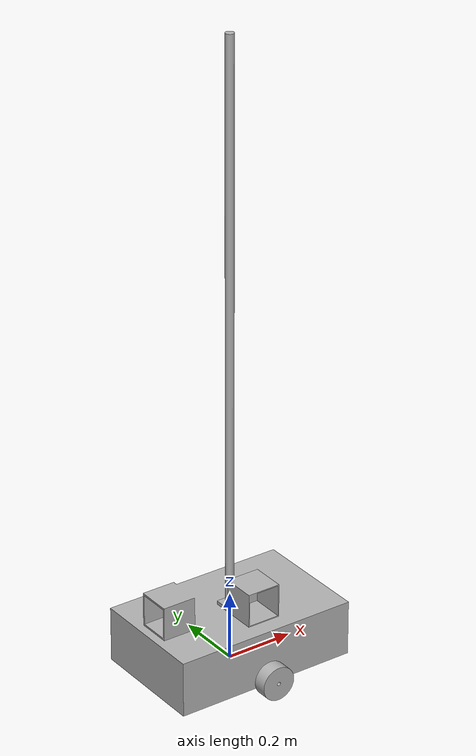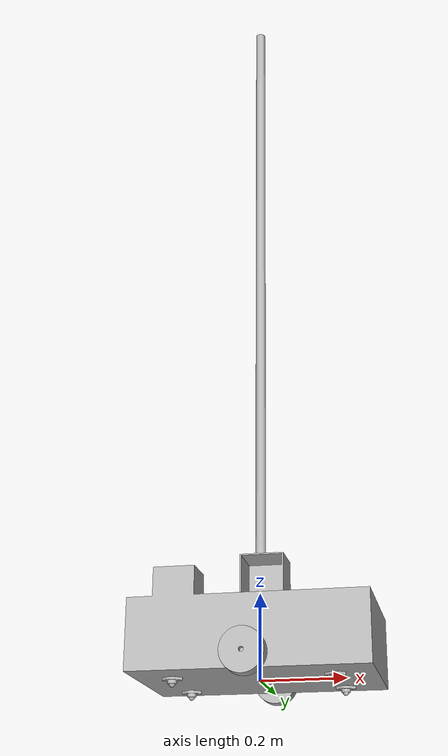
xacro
<?xml version="1.0"?>
<robot xmlns:xacro="http://www.ros.org/wiki/xacro"  name="robot">

    <xacro:arg name="use_ros2_control" default="true"/>
    <xacro:arg name="sim_mode" default="false"/>

    <xacro:include filename="robot_core.xacro" />

    <xacro:include filename="ros2_control.xacro" />

</robot>

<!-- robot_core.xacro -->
<robot name="final_urdf" xmlns:xacro="http://www.ros.org/wiki/xacro">

<xacro:include filename="$(find wh_bot)/description/materials.xacro" />
<xacro:include filename="$(find articubot_one)/description/inertial_macros.xacro" />

    <xacro:property name="chassis_length" value="0.335"/>
    <xacro:property name="chassis_width" value="0.265"/>
    <xacro:property name="chassis_height" value="0.138"/>
    <xacro:property name="chassis_mass" value="1.0"/>
    <xacro:property name="wheel_radius" value="0.033"/>
    <xacro:property name="wheel_thickness" value="0.026"/>
    <xacro:property name="wheel_mass" value="0.05"/>
    <xacro:property name="wheel_offset_x" value="0.226"/>
    <xacro:property name="wheel_offset_y" value="0.1485"/>
    <xacro:property name="wheel_offset_z" value="0.01"/>
    <xacro:property name="caster_wheel_radius" value="0.01"/>
    <xacro:property name="caster_wheel_mass" value="0.01"/>
    <xacro:property name="caster_wheel_offset_x" value="0.075"/>
    <xacro:property name="caster_wheel_offset_z" value="${wheel_offset_z - wheel_radius + caster_wheel_radius}"/>

<link name="base_link">
  <inertial>
    <origin xyz="-0.0015875 0.001 0.0831" rpy="0 0 0"/>
    <mass value="15.0"/>
    <inertia ixx="0.3" iyy="0.6" izz="0.8" ixy="0.0" iyz="0.0" ixz="0.0"/>
  </inertial>
  <visual>
    <origin xyz="0 0 0" rpy="0 0 0"/>
    <geometry>
      <mesh filename="file://$(find wh_bot)/meshes/tirth_bot/base_link.stl" scale="0.001 0.001 0.001"/>
    </geometry>
    <material name="silver"/>
  </visual>
  <collision>
    <origin xyz="0 0 0" rpy="0 0 0"/>
    <geometry>
      <mesh filename="file://$(find wh_bot)/meshes/tirth_bot/base_link.stl" scale="0.001 0.001 0.001"/>
    </geometry>
  </collision>
</link>

<link name="wheel1_1">
  <inertial>
    <origin xyz="0 0 0" rpy="0 0 0"/>
    <mass value="2.436"/>
    <inertia ixx="0.0018" iyy="0.003" izz="0.0018" ixy="0.0" iyz="0.0" ixz="0.0"/>
  </inertial>
  <visual>
    <origin xyz="-0.0 0.214 -0.029" rpy="0 0 0"/>
    <geometry>
      <mesh filename="file://$(find wh_bot)/meshes/tirth_bot/wheel1_1.stl" scale="0.001 0.001 0.001"/>
    </geometry>
    <material name="silver"/>
  </visual>
  <collision>
    <origin xyz="0 0 0" rpy="-1.5707 0 0"/>
    <geometry>
       <cylinder radius="0.05" length="0.02"/>
    </geometry>
  </collision>
</link>

<link name="wheel2_1">
  <inertial>
    <origin xyz="0 0 0" rpy="0 0 0"/>
    <mass value="2.436"/>
    <inertia ixx="0.0018" iyy="0.003" izz="0.0018" ixy="0.0" iyz="0.0" ixz="0.0"/>
  </inertial>
  <visual>
    <origin xyz="-0.0 -0.216 -0.029" rpy="0 0 0"/>
    <geometry>
      <mesh filename="file://$(find wh_bot)/meshes/tirth_bot/wheel2_1.stl" scale="0.001 0.001 0.001"/>
    </geometry>
    <material name="silver"/>
  </visual>
  <collision>
    <origin xyz="0 0 0" rpy="-1.5707 0 0"/>
    <geometry>
      <cylinder radius="0.05" length="0.02"/>
    </geometry>
  </collision>
</link>

<link name="mount_rod_1">
  <inertial>
    <origin xyz="0 0 0.8325" rpy="0 0 0"/>
    <mass value="6.415"/>
    <inertia ixx="1.482" iyy="1.482" izz="0.0005" ixy="0.0" iyz="0.0" ixz="0.0"/>
  </inertial>
  <visual>
    <origin xyz="-0.0 -0.001 -0.159" rpy="0 0 0"/>
    <geometry>
      <mesh filename="file://$(find wh_bot)/meshes/tirth_bot/mount_rod_1.stl" scale="0.001 0.001 0.001"/>
    </geometry>
    <material name="silver"/>
  </visual>
  <collision>
    <origin xyz="-0.0 -0.001 -0.159" rpy="0 0 0"/>
    <geometry>
      <mesh filename="file://$(find wh_bot)/meshes/tirth_bot/mount_rod_1.stl" scale="0.001 0.001 0.001"/>
    </geometry>
  </collision>
</link>

<link name="camera_mount_1">
  <inertial>
    <origin xyz="0.021 -0.057 0.044" rpy="0 0 0"/>
    <mass value="1.279"/>
    <inertia ixx="0.0036" iyy="0.0035" izz="0.0035" ixy="0.0002" iyz="0.0004" ixz="-0.0001"/>
  </inertial>
  <visual>
    <origin xyz="-0.0 -0.001 -0.164" rpy="0 0 0"/>
    <geometry>
      <mesh filename="file://$(find wh_bot)/meshes/tirth_bot/camera_mount_1.stl" scale="0.001 0.001 0.001"/>
    </geometry>
    <material name="silver"/>
  </visual>
  <collision>
    <origin xyz="-0.0 -0.001 -0.164" rpy="0 0 0"/>
    <geometry>
      <mesh filename="file://$(find wh_bot)/meshes/tirth_bot/camera_mount_1.stl" scale="0.001 0.001 0.001"/>
    </geometry>
  </collision>
</link>

<link name="castor_wheel_1_1">
  <inertial>
    <origin xyz="0 0 0" rpy="0 0 0"/>
    <mass value="0.055"/>
    <inertia ixx="4e-06" iyy="6e-06" izz="8e-06" ixy="0.0" iyz="0.0" ixz="0.0"/>
  </inertial>
  <visual>
    <origin xyz="-0.1839 0.0935 0.0" rpy="0 0 0"/>
    <geometry>
      <mesh filename="file://$(find wh_bot)/meshes/tirth_bot/castor_wheel_1_1.stl" scale="0.001 0.001 0.001"/>
    </geometry>
    <material name="silver"/>
  </visual>
  <collision>
    <origin xyz="0 0 0" rpy="0 0 0"/>
    <geometry>
       <sphere radius="0.018"/>
    </geometry>
  </collision>
</link>

<link name="castor_wheel_2_1">
  <inertial>
    <origin xyz="0 0 0" rpy="0 0 0"/>
    <mass value="0.055"/>
    <inertia ixx="4e-06" iyy="6e-06" izz="8e-06" ixy="0.0" iyz="0.0" ixz="0.0"/>
  </inertial>
  <visual>
    <origin xyz="0.1839 0.0935 0.0" rpy="0 0 0"/>
    <geometry>
      <mesh filename="file://$(find wh_bot)/meshes/tirth_bot/castor_wheel_2_1.stl" scale="0.001 0.001 0.001"/>
    </geometry>
    <material name="silver"/>
  </visual>
  <collision>
    <origin xyz="0 0 0" rpy="0 0 0"/>
    <geometry>
      <sphere radius="0.018"/>
    </geometry>
  </collision>
</link>

<link name="castor_wheel_3_1">
  <inertial>
    <origin xyz="0 0 0" rpy="0 0 0"/>
    <mass value="0.055"/>
    <inertia ixx="4e-06" iyy="6e-06" izz="8e-06" ixy="0.0" iyz="0.0" ixz="0.0"/>
  </inertial>
  <visual>
    <origin xyz="-0.1839 -0.0955 0.0" rpy="0 0 0"/>
    <geometry>
      <mesh filename="file://$(find wh_bot)/meshes/tirth_bot/castor_wheel_3_1.stl" scale="0.001 0.001 0.001"/>
    </geometry>
    <material name="silver"/>
  </visual>
  <collision>
    <origin xyz="0 0 0" rpy="0 0 0"/>
    <geometry>
      <sphere radius="0.018"/>
    </geometry>
  </collision>
</link>

<link name="castor_wheel_4_1">
  <inertial>
    <origin xyz="0 0 0" rpy="0 0 0"/>
    <mass value="0.055"/>
    <inertia ixx="4e-06" iyy="6e-06" izz="8e-06" ixy="0.0" iyz="0.0" ixz="0.0"/>
  </inertial>
  <visual>
    <origin xyz="0.1839 -0.0955 0.0" rpy="0 0 0"/>
    <geometry>
      <mesh filename="file://$(find wh_bot)/meshes/tirth_bot/castor_wheel_4_1.stl" scale="0.001 0.001 0.001"/>
    </geometry>
    <material name="silver"/>
  </visual>
  <collision>
    <origin xyz="0 0 0" rpy="0 0 0"/>
    <geometry>
      <sphere radius="0.018"/>
    </geometry>
  </collision>
</link>

<joint name="right_wheel_joint" type="continuous">
  <origin xyz="0.0 -0.214 0.029" rpy="0 0 0"/>
  <parent link="base_link"/>
  <child link="wheel1_1"/>
  <axis xyz="0.0 1.0 0.0"/>
</joint>

<joint name="left_wheel_joint" type="continuous">
  <origin xyz="0.0 0.216 0.029" rpy="0 0 0"/>
  <parent link="base_link"/>
  <child link="wheel2_1"/>
  <axis xyz="0.0 1.0 0.0"/>
</joint>

<joint name="rigid_1" type="fixed">
  <origin xyz="0.0 0.001 0.159" rpy="0 0 0"/>
  <parent link="base_link"/>
  <child link="mount_rod_1"/>
</joint>

<joint name="joint_lift_2" type="prismatic">
  <origin xyz="0.0 0.001 0.164" rpy="0 0 0"/>
  <parent link="base_link"/>
  <child link="camera_mount_1"/>
  <axis xyz="0.0 0.0 1.0"/>
  <limit upper="1.8" lower="-0.001" effort="100" velocity="100"/>
</joint>

<joint name="rigid_2" type="fixed">
  <origin xyz="0.1839 -0.0935 -0.003" rpy="0 0 0"/>
  <parent link="base_link"/>
  <child link="castor_wheel_1_1"/>
</joint>

<joint name="rigid_3" type="fixed">
  <origin xyz="-0.1839 -0.0935 -0.003" rpy="0 0 0"/>
  <parent link="base_link"/>
  <child link="castor_wheel_2_1"/>
</joint>

<joint name="rigid_4" type="fixed">
  <origin xyz="0.1839 0.0955 -0.003" rpy="0 0 0"/>
  <parent link="base_link"/>
  <child link="castor_wheel_3_1"/>
</joint>

<joint name="rigid_5" type="fixed">
  <origin xyz="-0.1839 0.0955 -0.003" rpy="0 0 0"/>
  <parent link="base_link"/>
  <child link="castor_wheel_4_1"/>
</joint>

<joint name="camera_joint" type="fixed">
      <parent link="base_link"/>
      <child link="camera_link"/>
            <origin rpy="0 0 0" xyz="0.2955489003 0.0 0.23"/>
            </joint>

  <link name="camera_link">
  </link>

<joint name="camera_imu_joint" type="fixed">
      <parent link="camera_link"/>
      <child link="camera_imu_optical_frame"/>
            <origin rpy="0 0 0" xyz="0.2955489003 0.0 0.23"/>
            </joint>

  <link name="camera_imu_optical_frame">
  </link>

<gazebo reference="wheel1_1">
  <mu1>200.0</mu1>
  <mu2>200.0</mu2>
  <kp>1000000.0</kp>
  <kd>1.0</kd>
</gazebo>

<gazebo reference="wheel2_1">
  <mu1>200.0</mu1>
  <mu2>200.0</mu2>
  <kp>1000000.0</kp>
  <kd>1.0</kd>
</gazebo>

<gazebo reference="castor_wheel_1_1">
  <mu1>0.001</mu1>
  <mu2>0.001</mu2>
</gazebo>

<gazebo reference="castor_wheel_2_1">
  <mu1>0.001</mu1>
  <mu2>0.001</mu2>
</gazebo>

<gazebo reference="castor_wheel_3_1">
  <mu1>0.001</mu1>
  <mu2>0.001</mu2>
</gazebo>

<gazebo reference="castor_wheel_4_1">
  <mu1>0.001</mu1>
  <mu2>0.001</mu2>
</gazebo>

</robot>

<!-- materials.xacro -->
<robot xmlns:xacro="http://www.ros.org/wiki/xacro" name="hv_bot">

    <material name="black">
        <color rgba="0.0 0.0 0.0 1.0"/>
    </material>

    <material name="blue">
        <color rgba="0.0 0.0 0.8 1.0"/>
    </material>

    <material name="green">
        <color rgba="0.0 0.8 0.0 1.0"/>
    </material>

    <material name="yellow">
        <color rgba="1.0 1.0 0.0 1.0"/>
    </material>

    <material name="dark_grey">
        <color rgba="0.2 0.2 0.2 1.0"/>
    </material>

    <material name="orange">
        <color rgba="${255/255} ${108/255} ${10/255} 1.0"/>
    </material>

    <material name="brown">
        <color rgba="${139/255} ${69/255} ${19/255} 1.0"/>
    </material>

    <material name="red">
        <color rgba="0.8 0.0 0.0 1.0"/>
    </material>

    <material name="turquoise">
        <color rgba="${64/255} ${224/255} ${208/255} 1.0"/>
    </material>

    <material name="purple">
        <color rgba="${128/255} ${0/255} ${128/255} 1.0"/>
    </material>

    <material name="white">
        <color rgba="1.0 1.0 1.0 1.0"/>
    </material>

    <material name="aluminium">
        <color rgba="0.5 0.5 0.5 1"/>
    </material>

    <material name="plastic">
        <color rgba="0.1 0.1 0.1 1"/>
    </material>

    <material name="silver">
  <color rgba="0.700 0.700 0.700 1.000"/>
</material>

</robot>
